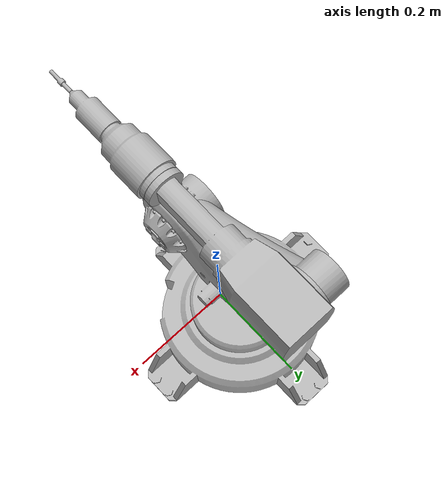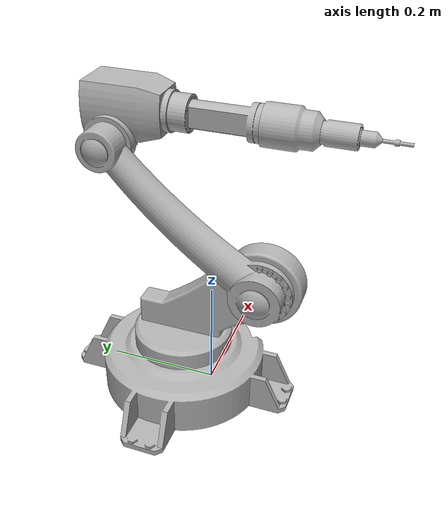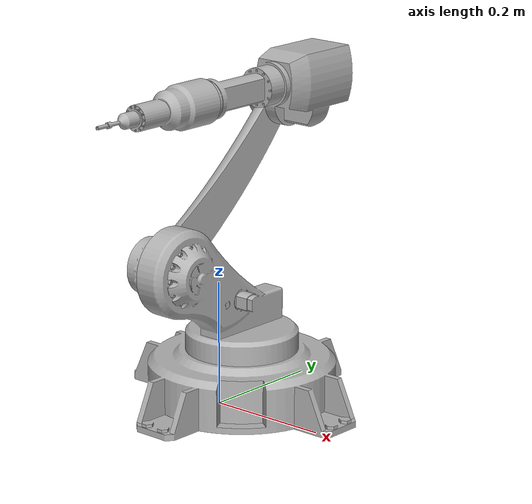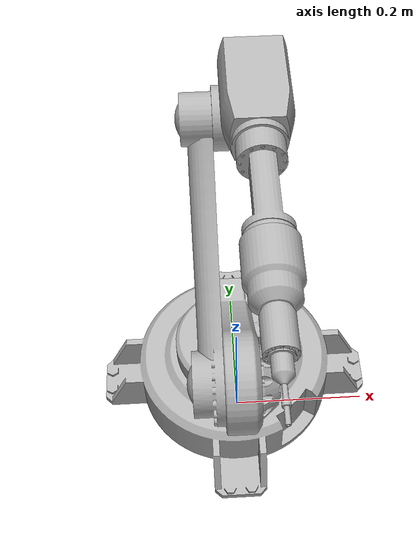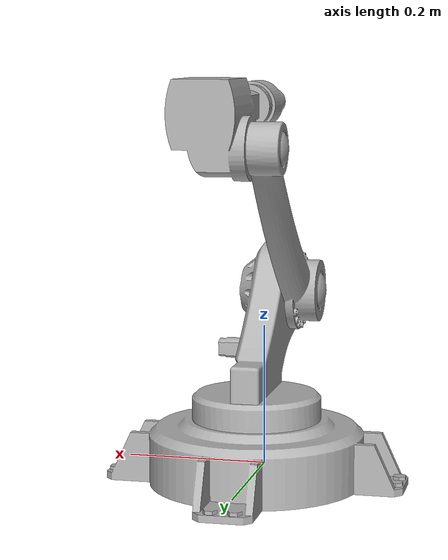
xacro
<?xml version="1.0" ?>
<robot name="rob_arm" xmlns:xacro="http://www.ros.org/wiki/xacro">

<xacro:include filename="$(find rob_arm_description)/urdf/materials.xacro" />
<xacro:include filename="$(find rob_arm_description)/urdf/rob_arm.trans" />
<xacro:include filename="$(find rob_arm_description)/urdf/rob_arm.gazebo" />
<link name="base_link">
  <inertial>
    <origin rpy="0 0 0" xyz="-0.002579043465905267 0.05658440977320845 0.02860062856169175"/>
    <mass value="49.22540816473109"/>
    <inertia ixx="0.324812" ixy="-0.007234" ixz="0.000186" iyy="0.326644" iyz="-0.000212" izz="0.589198"/>
  </inertial>
  <visual>
    <origin rpy="0 0 0" xyz="0 0 0"/>
    <geometry>
      <mesh filename="package://rob_arm_description/meshes/base_link.stl" scale="0.001 0.001 0.001"/>
    </geometry>
    <material name="silver"/>
  </visual>
  <collision>
    <origin rpy="0 0 0" xyz="0 0 0"/>
    <geometry>
      <mesh filename="package://rob_arm_description/meshes/base_link.stl" scale="0.001 0.001 0.001"/>
    </geometry>
  </collision>
</link>

<link name="rarm_2_1">
  <inertial>
    <origin rpy="0 0 0" xyz="0.004098206763281077 -0.06029104872534399 0.06611429078598172"/>
    <mass value="19.158926114295692"/>
    <inertia ixx="0.199181" ixy="0.005036" ixz="-0.00458" iyy="0.100013" iyz="0.075905" izz="0.135542"/>
  </inertial>
  <visual>
    <origin rpy="0 0 0" xyz="0.001157 -0.054971 -0.097553"/>
    <geometry>
      <mesh filename="package://rob_arm_description/meshes/rarm_2_1.stl" scale="0.001 0.001 0.001"/>
    </geometry>
    <material name="silver"/>
  </visual>
  <collision>
    <origin rpy="0 0 0" xyz="0.001157 -0.054971 -0.097553"/>
    <geometry>
      <mesh filename="package://rob_arm_description/meshes/rarm_2_1.stl" scale="0.001 0.001 0.001"/>
    </geometry>
  </collision>
</link>

<link name="rarm_3__1">
  <inertial>
    <origin rpy="0 0 0" xyz="-0.03655819265436887 0.11665899076053965 0.0906188282069729"/>
    <mass value="7.705819554287586"/>
    <inertia ixx="0.146736" ixy="-0.000183" ixz="-2.4e-05" iyy="0.061245" iyz="-0.068857" izz="0.087799"/>
  </inertial>
  <visual>
    <origin rpy="0 0 0" xyz="0.001157 0.095029 -0.237553"/>
    <geometry>
      <mesh filename="package://rob_arm_description/meshes/rarm_3__1.stl" scale="0.001 0.001 0.001"/>
    </geometry>
    <material name="silver"/>
  </visual>
  <collision>
    <origin rpy="0 0 0" xyz="0.001157 0.095029 -0.237553"/>
    <geometry>
      <mesh filename="package://rob_arm_description/meshes/rarm_3__1.stl" scale="0.001 0.001 0.001"/>
    </geometry>
  </collision>
</link>

<link name="rarm_4_1">
  <inertial>
    <origin rpy="0 0 0" xyz="0.03307778405701662 -0.04290400078851586 0.03889151042177713"/>
    <mass value="11.53837825152501"/>
    <inertia ixx="0.066971" ixy="0.001547" ixz="-0.001632" iyy="0.015991" iyz="0.003029" izz="0.064473"/>
  </inertial>
  <visual>
    <origin rpy="0 0 0" xyz="0.001157 -0.173086 -0.462528"/>
    <geometry>
      <mesh filename="package://rob_arm_description/meshes/rarm_4_1.stl" scale="0.001 0.001 0.001"/>
    </geometry>
    <material name="silver"/>
  </visual>
  <collision>
    <origin rpy="0 0 0" xyz="0.001157 -0.173086 -0.462528"/>
    <geometry>
      <mesh filename="package://rob_arm_description/meshes/rarm_4_1.stl" scale="0.001 0.001 0.001"/>
    </geometry>
  </collision>
</link>

<link name="rarm_5_1">
  <inertial>
    <origin rpy="0 0 0" xyz="2.2922389877888527e-07 -0.07663807527150272 4.958168127178197e-07"/>
    <mass value="3.1547399587029537"/>
    <inertia ixx="0.00679" ixy="0.0" ixz="-0.0" iyy="0.001465" iyz="0.0" izz="0.00679"/>
  </inertial>
  <visual>
    <origin rpy="0 0 0" xyz="-0.035043 0.051914 -0.507528"/>
    <geometry>
      <mesh filename="package://rob_arm_description/meshes/rarm_5_1.stl" scale="0.001 0.001 0.001"/>
    </geometry>
    <material name="silver"/>
  </visual>
  <collision>
    <origin rpy="0 0 0" xyz="-0.035043 0.051914 -0.507528"/>
    <geometry>
      <mesh filename="package://rob_arm_description/meshes/rarm_5_1.stl" scale="0.001 0.001 0.001"/>
    </geometry>
  </collision>
</link>

<joint name="Rev1" type="continuous">
  <origin rpy="0 0 0" xyz="-0.001157 0.054971 0.097553"/>
  <parent link="base_link"/>
  <child link="rarm_2_1"/>
  <axis xyz="-0.0 -0.0 1.0"/>
</joint>

<joint name="Rev2" type="revolute">
  <origin rpy="0 0 0" xyz="0.0 -0.15 0.14"/>
  <parent link="rarm_2_1"/>
  <child link="rarm_3__1"/>
  <axis xyz="-1.0 0.0 0.0"/>
  <limit effort="100" lower="-3.665191" upper="0.785398" velocity="100"/>
</joint>

<joint name="Rev3" type="revolute">
  <origin rpy="0 0 0" xyz="0.0 0.268115 0.224975"/>
  <parent link="rarm_3__1"/>
  <child link="rarm_4_1"/>
  <axis xyz="1.0 -0.0 -0.0"/>
  <limit effort="100" lower="-4.363323" upper="0.523599" velocity="100"/>
</joint>

<joint name="Rigid4" type="fixed">
  <origin rpy="0 0 0" xyz="0.0362 -0.225 0.045"/>
  <parent link="rarm_4_1"/>
  <child link="rarm_5_1"/>
</joint>
<gazebo>
        <plugin name="joint_state_publisher" filename="libgazebo_ros_joint_state_publisher.so">
            <jointName>Rev1,Rev2,Rev3</jointName>
        </plugin>
    </gazebo>

</robot>

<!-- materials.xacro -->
<robot name="rob_arm" xmlns:xacro="http://www.ros.org/wiki/xacro" >

<material name="silver">
  <color rgba="0.700 0.700 0.700 1.000"/>
</material>

</robot>

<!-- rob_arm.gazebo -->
<robot name="rob_arm" xmlns:xacro="http://www.ros.org/wiki/xacro" >

<xacro:property name="body_color" value="Gazebo/Silver" />

<gazebo>
  <plugin filename="libgazebo_ros_control.so" name="control"/>
</gazebo>
<gazebo reference="base_link">
  <material>${body_color}</material>
  <mu1>0.2</mu1>
  <mu2>0.2</mu2>
  <selfCollide>true</selfCollide>
  <gravity>true</gravity>
</gazebo>

<gazebo reference="rarm_2_1">
  <material>${body_color}</material>
  <mu1>0.2</mu1>
  <mu2>0.2</mu2>
  <selfCollide>true</selfCollide>
</gazebo>

<gazebo reference="rarm_3__1">
  <material>${body_color}</material>
  <mu1>0.2</mu1>
  <mu2>0.2</mu2>
  <selfCollide>true</selfCollide>
</gazebo>

<gazebo reference="rarm_4_1">
  <material>${body_color}</material>
  <mu1>0.2</mu1>
  <mu2>0.2</mu2>
  <selfCollide>true</selfCollide>
</gazebo>

<gazebo reference="rarm_5_1">
  <material>${body_color}</material>
  <mu1>0.2</mu1>
  <mu2>0.2</mu2>
  <selfCollide>true</selfCollide>
</gazebo>

</robot>
